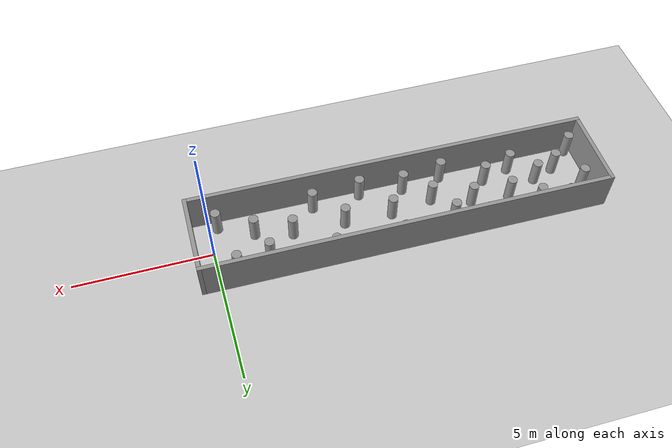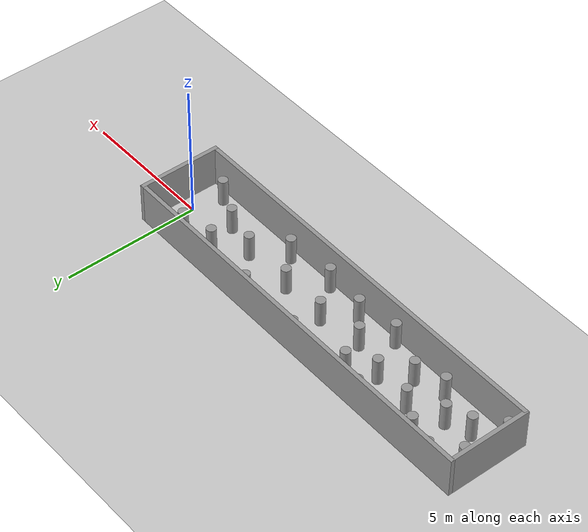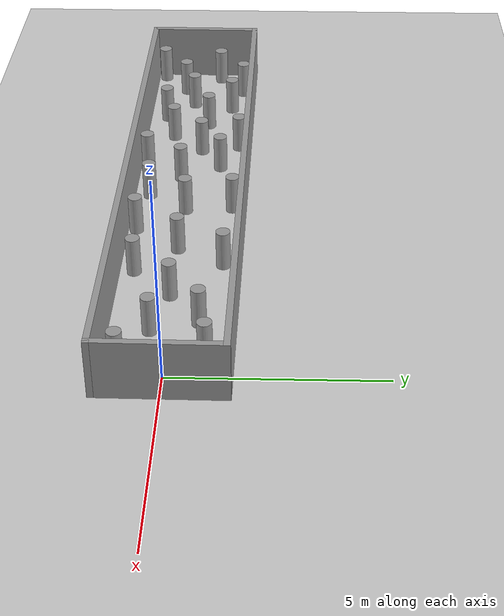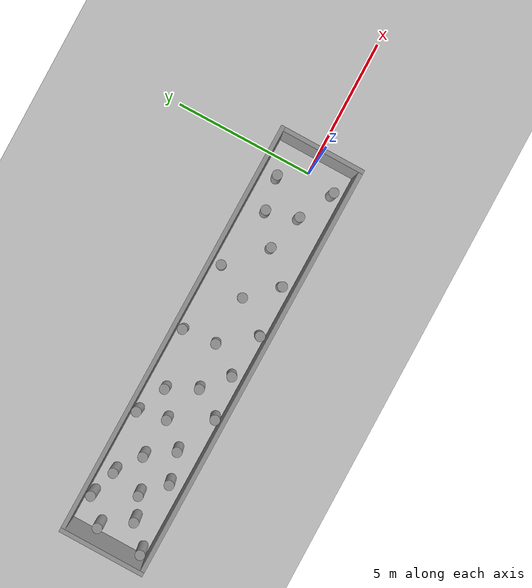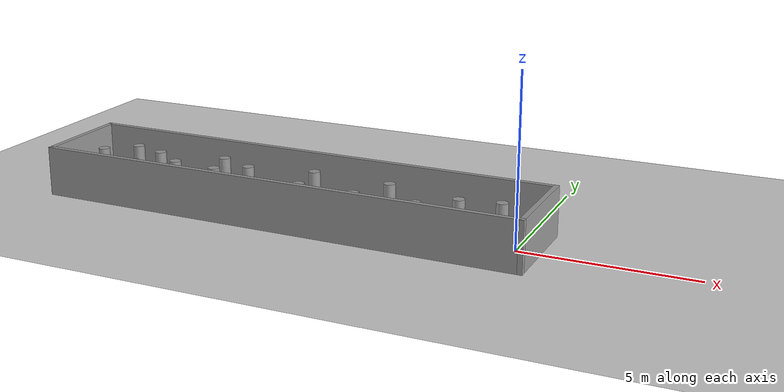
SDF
<sdf version="1.7">
 <world name="default">
  <light name="sun" type="directional">
   <pose>0 0 10 0 -0 0</pose>
   <diffuse>0.8 0.8 0.8 1</diffuse>
   <specular>0.2 0.2 0.2 1</specular>
   <attenuation>
    <range>1000</range>
    <constant>0.9</constant>
    <linear>0.01</linear>
    <quadratic>0.001</quadratic>
   </attenuation>
   <direction>-0.5 0.1 -0.9</direction>
   <spot><inner_angle>0</inner_angle><outer_angle>0</outer_angle><falloff>0</falloff></spot>
  </light>
  <model name="ground_plane">
   <static>1</static>
   <link name="link">
    <collision name="collision">
     <geometry><plane><normal>0 0 1</normal><size>100 100</size></plane></geometry>
     <surface><friction><ode><mu>100</mu><mu2>50</mu2></ode></friction></surface>
    </collision>
    <visual name="visual">
     <cast_shadows>0</cast_shadows>
     <geometry><plane><normal>0 0 1</normal><size>100 100</size></plane></geometry>
     <material>
      <script><uri>file://media/materials/scripts/gazebo.material</uri><name>Gazebo/Grey</name></script>
     </material>
    </visual>
   </link>
  </model>
  <gravity>0 0 -9.8</gravity>
  <magnetic_field>6e-06 2.3e-05 -4.2e-05</magnetic_field>
  <atmosphere type="adiabatic"/>
  <physics type="ode">
   <max_step_size>0.001</max_step_size>
   <real_time_factor>1</real_time_factor>
   <real_time_update_rate>1000</real_time_update_rate>
  </physics>
  <scene><ambient>0.4 0.4 0.4 1</ambient><background>0.7 0.7 0.7 1</background><shadows>1</shadows></scene>
  <spherical_coordinates>
   <surface_model>EARTH_WGS84</surface_model>
   <latitude_deg>0</latitude_deg>
   <longitude_deg>0</longitude_deg>
   <elevation>0</elevation>
   <heading_deg>0</heading_deg>
  </spherical_coordinates>
  <model name="long">
   <pose>-6.79828 0.059999 0 0 -0 1.56264</pose>
   <link name="Wall_10">
    <collision name="Wall_10_Collision">
     <geometry><box><size>3.08 0.15 1.5</size></box></geometry>
     <pose>0 0 0.75 0 -0 0</pose>
    </collision>
    <visual name="Wall_10_Visual">
     <pose>0 0 0.75 0 -0 0</pose>
     <geometry><box><size>3.08 0.15 1.5</size></box></geometry>
     <material>
      <script><uri>file://media/materials/scripts/gazebo.material</uri><name>Gazebo/Grey</name></script>
      <ambient>1 1 1 1</ambient>
     </material>
     <meta><layer>0</layer></meta>
    </visual>
    <pose>-0 7.425 0 0 -0 0</pose>
   </link>
   <link name="Wall_7">
    <collision name="Wall_7_Collision">
     <geometry><box><size>15 0.15 1.5</size></box></geometry>
     <pose>0 0 0.75 0 -0 0</pose>
    </collision>
    <visual name="Wall_7_Visual">
     <pose>0 0 0.75 0 -0 0</pose>
     <geometry><box><size>15 0.15 1.5</size></box></geometry>
     <material>
      <script><uri>file://media/materials/scripts/gazebo.material</uri><name>Gazebo/Grey</name></script>
      <ambient>1 1 1 1</ambient>
     </material>
     <meta><layer>0</layer></meta>
    </visual>
    <pose>1.465 0 0 0 -0 -1.5708</pose>
   </link>
   <link name="Wall_8">
    <collision name="Wall_8_Collision">
     <geometry><box><size>3.08 0.15 1.5</size></box></geometry>
     <pose>0 0 0.75 0 -0 0</pose>
    </collision>
    <visual name="Wall_8_Visual">
     <pose>0 0 0.75 0 -0 0</pose>
     <geometry><box><size>3.08 0.15 1.5</size></box></geometry>
     <material>
      <script><uri>file://media/materials/scripts/gazebo.material</uri><name>Gazebo/Grey</name></script>
      <ambient>1 1 1 1</ambient>
     </material>
     <meta><layer>0</layer></meta>
    </visual>
    <pose>-0 -7.425 0 0 -0 3.14159</pose>
   </link>
   <link name="Wall_9">
    <collision name="Wall_9_Collision">
     <geometry><box><size>15 0.15 1.5</size></box></geometry>
     <pose>0 0 0.75 0 -0 0</pose>
    </collision>
    <visual name="Wall_9_Visual">
     <pose>0 0 0.75 0 -0 0</pose>
     <geometry><box><size>15 0.15 1.5</size></box></geometry>
     <material>
      <script><uri>file://media/materials/scripts/gazebo.material</uri><name>Gazebo/Grey</name></script>
      <ambient>1 1 1 1</ambient>
     </material>
     <meta><layer>0</layer></meta>
    </visual>
    <pose>-1.465 0 0 0 -0 1.5708</pose>
   </link>
   <static>1</static>
  </model>
  <model name="unit_cylinder">
   <pose>-0.332648 -1.02893 0.499996 0 -0 6e-06</pose>
   <link name="link">
    <inertial>
     <mass>1</mass>
     <inertia><ixx>0.145833</ixx><ixy>0</ixy><ixz>0</ixz><iyy>0.145833</iyy><iyz>0</iyz><izz>0.125</izz></inertia>
    </inertial>
    <collision name="collision">
     <geometry><cylinder><radius>0.175357</radius><length>1</length></cylinder></geometry>
    </collision>
    <visual name="visual">
     <geometry><cylinder><radius>0.175357</radius><length>1</length></cylinder></geometry>
     <material>
      <script><name>Gazebo/Grey</name><uri>file://media/materials/scripts/gazebo.material</uri></script>
     </material>
    </visual>
   </link>
  </model>
  <model name="unit_cylinder_clone">
   <pose>-0.697476 0.898736 0.499998 0 -0 5e-06</pose>
   <link name="link">
    <inertial>
     <mass>1</mass>
     <inertia><ixx>0.145833</ixx><ixy>0</ixy><ixz>0</ixz><iyy>0.145833</iyy><iyz>0</iyz><izz>0.125</izz></inertia>
    </inertial>
    <collision name="collision">
     <geometry><cylinder><radius>0.175357</radius><length>1</length></cylinder></geometry>
    </collision>
    <visual name="visual">
     <geometry><cylinder><radius>0.175357</radius><length>1</length></cylinder></geometry>
     <material>
      <script><name>Gazebo/Grey</name><uri>file://media/materials/scripts/gazebo.material</uri></script>
     </material>
    </visual>
   </link>
  </model>
  <model name="unit_cylinder_clone_0">
   <pose>-1.57304 -0.414221 0.499998 0 -0 5e-06</pose>
   <link name="link">
    <inertial>
     <mass>1</mass>
     <inertia><ixx>0.145833</ixx><ixy>0</ixy><ixz>0</ixz><iyy>0.145833</iyy><iyz>0</iyz><izz>0.125</izz></inertia>
    </inertial>
    <collision name="collision">
     <geometry><cylinder><radius>0.175357</radius><length>1</length></cylinder></geometry>
    </collision>
    <visual name="visual">
     <geometry><cylinder><radius>0.175357</radius><length>1</length></cylinder></geometry>
     <material>
      <script><name>Gazebo/Grey</name><uri>file://media/materials/scripts/gazebo.material</uri></script>
     </material>
    </visual>
   </link>
  </model>
  <model name="unit_cylinder_clone_1">
   <pose>-1.8963 0.686442 0.499992 0 -0 6e-06</pose>
   <link name="link">
    <inertial>
     <mass>1</mass>
     <inertia><ixx>0.145833</ixx><ixy>0</ixy><ixz>0</ixz><iyy>0.145833</iyy><iyz>0</iyz><izz>0.125</izz></inertia>
    </inertial>
    <collision name="collision">
     <geometry><cylinder><radius>0.175357</radius><length>1</length></cylinder></geometry>
    </collision>
    <visual name="visual">
     <geometry><cylinder><radius>0.175357</radius><length>1</length></cylinder></geometry>
     <material>
      <script><name>Gazebo/Grey</name><uri>file://media/materials/scripts/gazebo.material</uri></script>
     </material>
    </visual>
   </link>
  </model>
  <model name="unit_cylinder_clone_3">
   <pose>-2.90229 -0.058969 0.499999 0 -0 6e-06</pose>
   <link name="link">
    <inertial>
     <mass>1</mass>
     <inertia><ixx>0.145833</ixx><ixy>0</ixy><ixz>0</ixz><iyy>0.145833</iyy><iyz>0</iyz><izz>0.125</izz></inertia>
    </inertial>
    <collision name="collision">
     <geometry><cylinder><radius>0.175357</radius><length>1</length></cylinder></geometry>
    </collision>
    <visual name="visual">
     <geometry><cylinder><radius>0.175357</radius><length>1</length></cylinder></geometry>
     <material>
      <script><name>Gazebo/Grey</name><uri>file://media/materials/scripts/gazebo.material</uri></script>
     </material>
    </visual>
   </link>
  </model>
  <model name="unit_cylinder_clone_4">
   <pose>-3.86561 -1.00266 0.499997 0 -0 9e-06</pose>
   <link name="link">
    <inertial>
     <mass>1</mass>
     <inertia><ixx>0.145833</ixx><ixy>0</ixy><ixz>0</ixz><iyy>0.145833</iyy><iyz>0</iyz><izz>0.125</izz></inertia>
    </inertial>
    <collision name="collision">
     <geometry><cylinder><radius>0.175357</radius><length>1</length></cylinder></geometry>
    </collision>
    <visual name="visual">
     <geometry><cylinder><radius>0.175357</radius><length>1</length></cylinder></geometry>
     <material>
      <script><name>Gazebo/Grey</name><uri>file://media/materials/scripts/gazebo.material</uri></script>
     </material>
    </visual>
   </link>
  </model>
  <model name="unit_cylinder_clone_6">
   <pose>-4.81548 -0.016289 0.499992 0 -0 6e-06</pose>
   <link name="link">
    <inertial>
     <mass>1</mass>
     <inertia><ixx>0.145833</ixx><ixy>0</ixy><ixz>0</ixz><iyy>0.145833</iyy><iyz>0</iyz><izz>0.125</izz></inertia>
    </inertial>
    <collision name="collision">
     <geometry><cylinder><radius>0.175357</radius><length>1</length></cylinder></geometry>
    </collision>
    <visual name="visual">
     <geometry><cylinder><radius>0.175357</radius><length>1</length></cylinder></geometry>
     <material>
      <script><name>Gazebo/Grey</name><uri>file://media/materials/scripts/gazebo.material</uri></script>
     </material>
    </visual>
   </link>
  </model>
  <model name="unit_cylinder_clone_7">
   <pose>-4.18315 1.1285 0.499999 0 -0 7e-06</pose>
   <link name="link">
    <inertial>
     <mass>1</mass>
     <inertia><ixx>0.145833</ixx><ixy>0</ixy><ixz>0</ixz><iyy>0.145833</iyy><iyz>0</iyz><izz>0.125</izz></inertia>
    </inertial>
    <collision name="collision">
     <geometry><cylinder><radius>0.175357</radius><length>1</length></cylinder></geometry>
    </collision>
    <visual name="visual">
     <geometry><cylinder><radius>0.175357</radius><length>1</length></cylinder></geometry>
     <material>
      <script><name>Gazebo/Grey</name><uri>file://media/materials/scripts/gazebo.material</uri></script>
     </material>
    </visual>
   </link>
  </model>
  <model name="unit_cylinder_clone_8">
   <pose>-5.66355 -1.12944 0.499997 0 -0 9e-06</pose>
   <link name="link">
    <inertial>
     <mass>1</mass>
     <inertia><ixx>0.145833</ixx><ixy>0</ixy><ixz>0</ixz><iyy>0.145833</iyy><iyz>0</iyz><izz>0.125</izz></inertia>
    </inertial>
    <collision name="collision">
     <geometry><cylinder><radius>0.175357</radius><length>1</length></cylinder></geometry>
    </collision>
    <visual name="visual">
     <geometry><cylinder><radius>0.175357</radius><length>1</length></cylinder></geometry>
     <material>
      <script><name>Gazebo/Grey</name><uri>file://media/materials/scripts/gazebo.material</uri></script>
     </material>
    </visual>
   </link>
  </model>
  <model name="unit_cylinder_clone_9">
   <pose>-6.57586 0.046263 0.499991 0 -0 9e-06</pose>
   <link name="link">
    <inertial>
     <mass>1</mass>
     <inertia><ixx>0.145833</ixx><ixy>0</ixy><ixz>0</ixz><iyy>0.145833</iyy><iyz>0</iyz><izz>0.125</izz></inertia>
    </inertial>
    <collision name="collision">
     <geometry><cylinder><radius>0.175357</radius><length>1</length></cylinder></geometry>
    </collision>
    <visual name="visual">
     <geometry><cylinder><radius>0.175357</radius><length>1</length></cylinder></geometry>
     <material>
      <script><name>Gazebo/Grey</name><uri>file://media/materials/scripts/gazebo.material</uri></script>
     </material>
    </visual>
   </link>
  </model>
  <model name="unit_cylinder_clone_10">
   <pose>-6.6693 1.24591 0.499998 0 -0 5e-06</pose>
   <link name="link">
    <inertial>
     <mass>1</mass>
     <inertia><ixx>0.145833</ixx><ixy>0</ixy><ixz>0</ixz><iyy>0.145833</iyy><iyz>0</iyz><izz>0.125</izz></inertia>
    </inertial>
    <collision name="collision">
     <geometry><cylinder><radius>0.175357</radius><length>1</length></cylinder></geometry>
    </collision>
    <visual name="visual">
     <geometry><cylinder><radius>0.175357</radius><length>1</length></cylinder></geometry>
     <material>
      <script><name>Gazebo/Grey</name><uri>file://media/materials/scripts/gazebo.material</uri></script>
     </material>
    </visual>
   </link>
  </model>
  <model name="unit_cylinder_clone_11">
   <pose>-7.27901 -0.937027 0.499991 0 -0 9e-06</pose>
   <link name="link">
    <inertial>
     <mass>1</mass>
     <inertia><ixx>0.145833</ixx><ixy>0</ixy><ixz>0</ixz><iyy>0.145833</iyy><iyz>0</iyz><izz>0.125</izz></inertia>
    </inertial>
    <collision name="collision">
     <geometry><cylinder><radius>0.175357</radius><length>1</length></cylinder></geometry>
    </collision>
    <visual name="visual">
     <geometry><cylinder><radius>0.175357</radius><length>1</length></cylinder></geometry>
     <material>
      <script><name>Gazebo/Grey</name><uri>file://media/materials/scripts/gazebo.material</uri></script>
     </material>
    </visual>
   </link>
  </model>
  <model name="unit_cylinder_clone_12">
   <pose>-8.68918 0.832 0.499999 0 -0 5e-06</pose>
   <link name="link">
    <inertial>
     <mass>1</mass>
     <inertia><ixx>0.145833</ixx><ixy>0</ixy><ixz>0</ixz><iyy>0.145833</iyy><iyz>0</iyz><izz>0.125</izz></inertia>
    </inertial>
    <collision name="collision">
     <geometry><cylinder><radius>0.175357</radius><length>1</length></cylinder></geometry>
    </collision>
    <visual name="visual">
     <geometry><cylinder><radius>0.175357</radius><length>1</length></cylinder></geometry>
     <material>
      <script><name>Gazebo/Grey</name><uri>file://media/materials/scripts/gazebo.material</uri></script>
     </material>
    </visual>
   </link>
  </model>
  <model name="unit_cylinder_clone_13">
   <pose>-8.15339 -0.184703 0.499999 0 -0 7e-06</pose>
   <link name="link">
    <inertial>
     <mass>1</mass>
     <inertia><ixx>0.145833</ixx><ixy>0</ixy><ixz>0</ixz><iyy>0.145833</iyy><iyz>0</iyz><izz>0.125</izz></inertia>
    </inertial>
    <collision name="collision">
     <geometry><cylinder><radius>0.175357</radius><length>1</length></cylinder></geometry>
    </collision>
    <visual name="visual">
     <geometry><cylinder><radius>0.175357</radius><length>1</length></cylinder></geometry>
     <material>
      <script><name>Gazebo/Grey</name><uri>file://media/materials/scripts/gazebo.material</uri></script>
     </material>
    </visual>
   </link>
  </model>
  <model name="unit_cylinder_clone_14">
   <pose>-8.7978 -1.1215 0.499997 0 -0 9e-06</pose>
   <link name="link">
    <inertial>
     <mass>1</mass>
     <inertia><ixx>0.145833</ixx><ixy>0</ixy><ixz>0</ixz><iyy>0.145833</iyy><iyz>0</iyz><izz>0.125</izz></inertia>
    </inertial>
    <collision name="collision">
     <geometry><cylinder><radius>0.175357</radius><length>1</length></cylinder></geometry>
    </collision>
    <visual name="visual">
     <geometry><cylinder><radius>0.175357</radius><length>1</length></cylinder></geometry>
     <material>
      <script><name>Gazebo/Grey</name><uri>file://media/materials/scripts/gazebo.material</uri></script>
     </material>
    </visual>
   </link>
  </model>
  <model name="unit_cylinder_clone_15">
   <pose>-9.56446 0.286728 0.499991 0 -0 6e-06</pose>
   <link name="link">
    <inertial>
     <mass>1</mass>
     <inertia><ixx>0.145833</ixx><ixy>0</ixy><ixz>0</ixz><iyy>0.145833</iyy><iyz>0</iyz><izz>0.125</izz></inertia>
    </inertial>
    <collision name="collision">
     <geometry><cylinder><radius>0.175357</radius><length>1</length></cylinder></geometry>
    </collision>
    <visual name="visual">
     <geometry><cylinder><radius>0.175357</radius><length>1</length></cylinder></geometry>
     <material>
      <script><name>Gazebo/Grey</name><uri>file://media/materials/scripts/gazebo.material</uri></script>
     </material>
    </visual>
   </link>
  </model>
  <model name="unit_cylinder_clone_16">
   <pose>-9.78539 1.29259 0.499994 0 -0 1e-05</pose>
   <link name="link">
    <inertial>
     <mass>1</mass>
     <inertia><ixx>0.145833</ixx><ixy>0</ixy><ixz>0</ixz><iyy>0.145833</iyy><iyz>0</iyz><izz>0.125</izz></inertia>
    </inertial>
    <collision name="collision">
     <geometry><cylinder><radius>0.175357</radius><length>1</length></cylinder></geometry>
    </collision>
    <visual name="visual">
     <geometry><cylinder><radius>0.175357</radius><length>1</length></cylinder></geometry>
     <material>
      <script><name>Gazebo/Grey</name><uri>file://media/materials/scripts/gazebo.material</uri></script>
     </material>
    </visual>
   </link>
  </model>
  <model name="unit_cylinder_clone_17">
   <pose>-10.3276 -0.523465 0.499991 0 -0 8e-06</pose>
   <link name="link">
    <inertial>
     <mass>1</mass>
     <inertia><ixx>0.145833</ixx><ixy>0</ixy><ixz>0</ixz><iyy>0.145833</iyy><iyz>0</iyz><izz>0.125</izz></inertia>
    </inertial>
    <collision name="collision">
     <geometry><cylinder><radius>0.175357</radius><length>1</length></cylinder></geometry>
    </collision>
    <visual name="visual">
     <geometry><cylinder><radius>0.175357</radius><length>1</length></cylinder></geometry>
     <material>
      <script><name>Gazebo/Grey</name><uri>file://media/materials/scripts/gazebo.material</uri></script>
     </material>
    </visual>
   </link>
  </model>
  <model name="unit_cylinder_clone_18">
   <pose>-11.0017 0.399739 0.499999 0 -0 6e-06</pose>
   <link name="link">
    <inertial>
     <mass>1</mass>
     <inertia><ixx>0.145833</ixx><ixy>0</ixy><ixz>0</ixz><iyy>0.145833</iyy><iyz>0</iyz><izz>0.125</izz></inertia>
    </inertial>
    <collision name="collision">
     <geometry><cylinder><radius>0.175357</radius><length>1</length></cylinder></geometry>
    </collision>
    <visual name="visual">
     <geometry><cylinder><radius>0.175357</radius><length>1</length></cylinder></geometry>
     <material>
      <script><name>Gazebo/Grey</name><uri>file://media/materials/scripts/gazebo.material</uri></script>
     </material>
    </visual>
   </link>
  </model>
  <model name="unit_cylinder_clone_19">
   <pose>-11.4106 -0.809994 0.499997 0 -0 1e-05</pose>
   <link name="link">
    <inertial>
     <mass>1</mass>
     <inertia><ixx>0.145833</ixx><ixy>0</ixy><ixz>0</ixz><iyy>0.145833</iyy><iyz>0</iyz><izz>0.125</izz></inertia>
    </inertial>
    <collision name="collision">
     <geometry><cylinder><radius>0.175357</radius><length>1</length></cylinder></geometry>
    </collision>
    <visual name="visual">
     <geometry><cylinder><radius>0.175357</radius><length>1</length></cylinder></geometry>
     <material>
      <script><name>Gazebo/Grey</name><uri>file://media/materials/scripts/gazebo.material</uri></script>
     </material>
    </visual>
   </link>
  </model>
  <model name="unit_cylinder_clone_20">
   <pose>-11.9331 1.01325 0.499994 0 -0 1.1e-05</pose>
   <link name="link">
    <inertial>
     <mass>1</mass>
     <inertia><ixx>0.145833</ixx><ixy>0</ixy><ixz>0</ixz><iyy>0.145833</iyy><iyz>0</iyz><izz>0.125</izz></inertia>
    </inertial>
    <collision name="collision">
     <geometry><cylinder><radius>0.175357</radius><length>1</length></cylinder></geometry>
    </collision>
    <visual name="visual">
     <geometry><cylinder><radius>0.175357</radius><length>1</length></cylinder></geometry>
     <material>
      <script><name>Gazebo/Grey</name><uri>file://media/materials/scripts/gazebo.material</uri></script>
     </material>
    </visual>
   </link>
  </model>
  <model name="unit_cylinder_clone_21">
   <pose>-13.0503 -0.368868 0.499992 0 -0 6e-06</pose>
   <link name="link">
    <inertial>
     <mass>1</mass>
     <inertia><ixx>0.145833</ixx><ixy>0</ixy><ixz>0</ixz><iyy>0.145833</iyy><iyz>0</iyz><izz>0.125</izz></inertia>
    </inertial>
    <collision name="collision">
     <geometry><cylinder><radius>0.175357</radius><length>1</length></cylinder></geometry>
    </collision>
    <visual name="visual">
     <geometry><cylinder><radius>0.175357</radius><length>1</length></cylinder></geometry>
     <material>
      <script><name>Gazebo/Grey</name><uri>file://media/materials/scripts/gazebo.material</uri></script>
     </material>
    </visual>
   </link>
  </model>
  <model name="unit_cylinder_clone_22">
   <pose>-13.7806 0.610799 0.499992 0 -0 9e-06</pose>
   <link name="link">
    <inertial>
     <mass>1</mass>
     <inertia><ixx>0.145833</ixx><ixy>0</ixy><ixz>0</ixz><iyy>0.145833</iyy><iyz>0</iyz><izz>0.125</izz></inertia>
    </inertial>
    <collision name="collision">
     <geometry><cylinder><radius>0.175357</radius><length>1</length></cylinder></geometry>
    </collision>
    <visual name="visual">
     <geometry><cylinder><radius>0.175357</radius><length>1</length></cylinder></geometry>
     <material>
      <script><name>Gazebo/Grey</name><uri>file://media/materials/scripts/gazebo.material</uri></script>
     </material>
    </visual>
   </link>
  </model>
  <model name="unit_cylinder_clone_2">
   <pose>-12.2101 -0.078386 0.499992 0 -0 5e-06</pose>
   <link name="link">
    <inertial>
     <mass>1</mass>
     <inertia><ixx>0.145833</ixx><ixy>0</ixy><ixz>0</ixz><iyy>0.145833</iyy><iyz>0</iyz><izz>0.125</izz></inertia>
    </inertial>
    <collision name="collision">
     <geometry><cylinder><radius>0.175357</radius><length>1</length></cylinder></geometry>
    </collision>
    <visual name="visual">
     <geometry><cylinder><radius>0.175357</radius><length>1</length></cylinder></geometry>
     <material>
      <script><name>Gazebo/Grey</name><uri>file://media/materials/scripts/gazebo.material</uri></script>
     </material>
    </visual>
   </link>
  </model>
  <model name="unit_cylinder_clone_5">
   <pose>-13.8933 -1.05456 0.499996 0 -0 7e-06</pose>
   <link name="link">
    <inertial>
     <mass>1</mass>
     <inertia><ixx>0.145833</ixx><ixy>0</ixy><ixz>0</ixz><iyy>0.145833</iyy><iyz>0</iyz><izz>0.125</izz></inertia>
    </inertial>
    <collision name="collision">
     <geometry><cylinder><radius>0.175357</radius><length>1</length></cylinder></geometry>
    </collision>
    <visual name="visual">
     <geometry><cylinder><radius>0.175357</radius><length>1</length></cylinder></geometry>
     <material>
      <script><name>Gazebo/Grey</name><uri>file://media/materials/scripts/gazebo.material</uri></script>
     </material>
    </visual>
   </link>
  </model>
  <model name="unit_cylinder_clone_23">
   <pose>-12.9491 1.30527 0.499996 0 -0 7e-06</pose>
   <link name="link">
    <inertial>
     <mass>1</mass>
     <inertia><ixx>0.145833</ixx><ixy>0</ixy><ixz>0</ixz><iyy>0.145833</iyy><iyz>0</iyz><izz>0.125</izz></inertia>
    </inertial>
    <collision name="collision">
     <geometry><cylinder><radius>0.175357</radius><length>1</length></cylinder></geometry>
    </collision>
    <visual name="visual">
     <geometry><cylinder><radius>0.175357</radius><length>1</length></cylinder></geometry>
     <material>
      <script><name>Gazebo/Grey</name><uri>file://media/materials/scripts/gazebo.material</uri></script>
     </material>
    </visual>
   </link>
  </model>
 </world>
</sdf>
